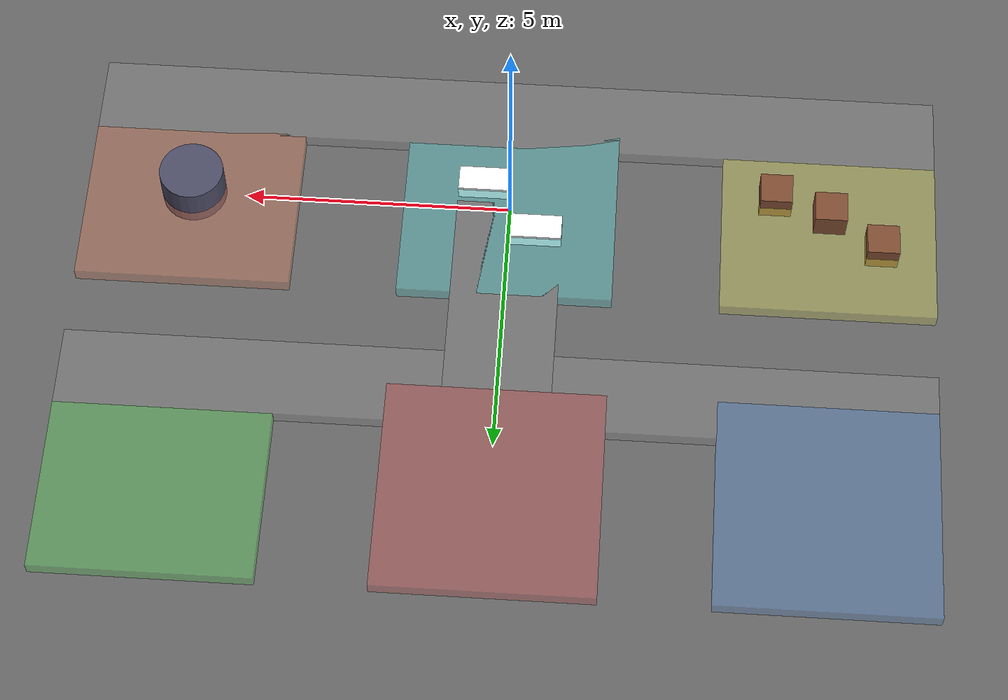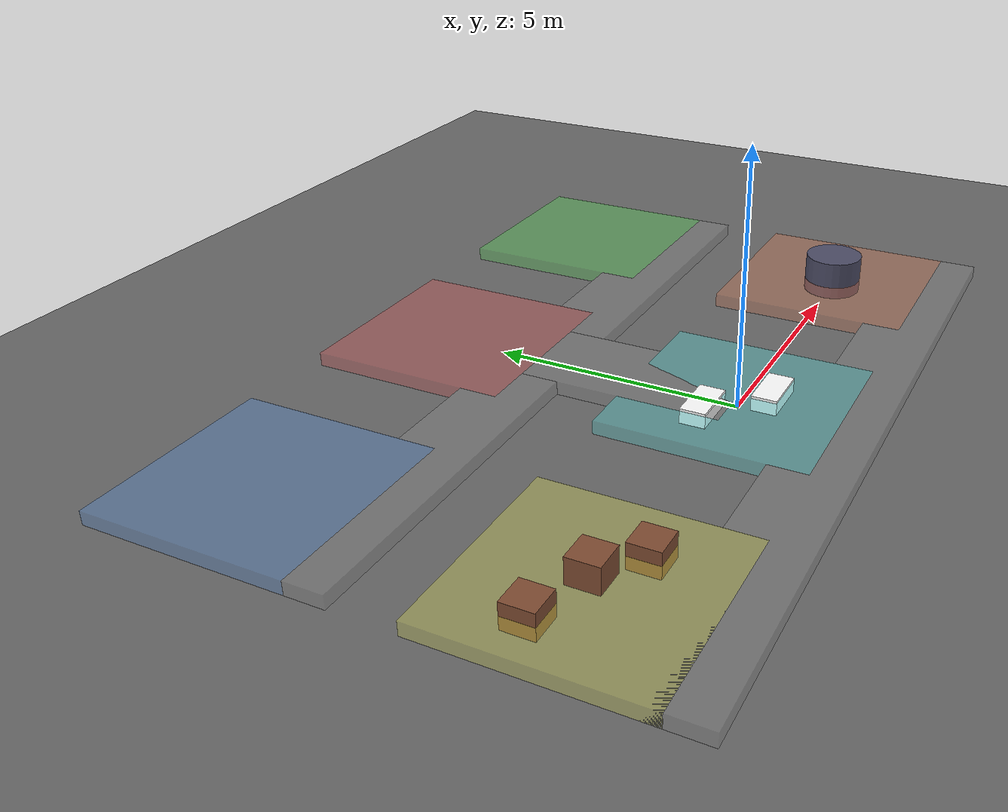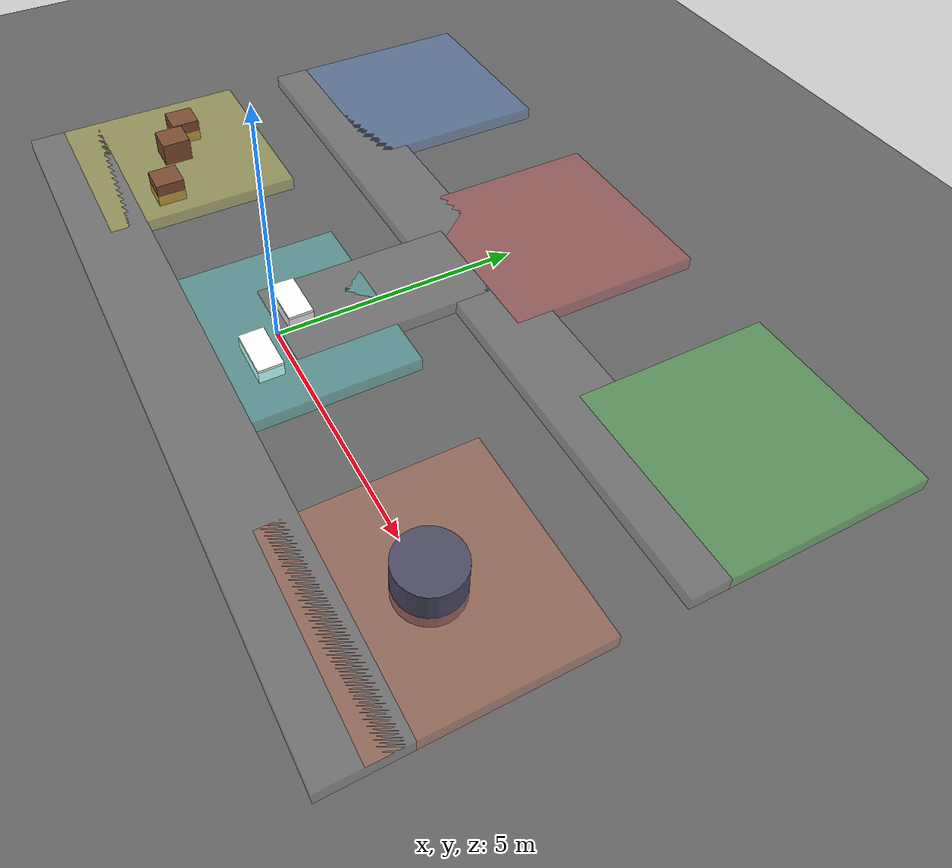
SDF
<?xml version="1.0" ?>
<sdf version="1.7">
  <world name="spacecraft_simple">

    <!-- ====== LIGHTING ====== -->

    <light name="ambient_light" type="directional">
      <pose>0 0 10 0 0 0</pose>
      <direction>-0.5 -0.5 -1</direction>
      <diffuse>0.9 0.9 0.9 1</diffuse>
      <specular>0.5 0.5 0.5 1</specular>
      <cast_shadows>false</cast_shadows>
    </light>

    <light name="overhead_light" type="point">
      <pose>0 3 8 0 0 0</pose>
      <diffuse>1 1 1 1</diffuse>
      <specular>0.5 0.5 0.5 1</specular>
      <attenuation>
        <range>20</range>
        <constant>0.5</constant>
        <linear>0.01</linear>
        <quadratic>0.001</quadratic>
      </attenuation>
    </light>

    <light name="side_light_1" type="point">
      <pose>-10 0 5 0 0 0</pose>
      <diffuse>0.7 0.7 0.8 1</diffuse>
      <specular>0.3 0.3 0.3 1</specular>
      <attenuation>
        <range>15</range>
        <constant>0.5</constant>
        <linear>0.01</linear>
        <quadratic>0.001</quadratic>
      </attenuation>
    </light>

    <light name="side_light_2" type="point">
      <pose>10 0 5 0 0 0</pose>
      <diffuse>0.7 0.7 0.8 1</diffuse>
      <specular>0.3 0.3 0.3 1</specular>
      <attenuation>
        <range>15</range>
        <constant>0.5</constant>
        <linear>0.01</linear>
        <quadratic>0.001</quadratic>
      </attenuation>
    </light>

    <!-- ====== GROUND ====== -->

    <model name="ground_plane">
      <static>true</static>
      <link name="link">
        <visual name="visual">
          <geometry>
            <plane><normal>0 0 1</normal><size>30 30</size></plane>
          </geometry>
          <material>
            <ambient>0.3 0.3 0.3 1</ambient>
            <diffuse>0.4 0.4 0.4 1</diffuse>
          </material>
        </visual>
        <collision name="collision">
          <geometry>
            <plane><normal>0 0 1</normal><size>30 30</size></plane>
          </geometry>
        </collision>
      </link>
    </model>

    <!-- ====== ROOMS (WITHOUT ROOFS - height 1.5 instead of 3) ====== -->

    <!-- COMMAND MODULE (Top-Left - Blue) - NO ROOF -->
    <model name="command_module">
      <static>true</static>
      <pose>-6 6 0 0 0 0</pose>
      <link name="wall">
        <visual name="visual">
          <geometry><box><size>4 4 0.5</size></box></geometry>
          <material>
            <ambient>0.2 0.4 0.8 0.3</ambient>
            <diffuse>0.3 0.6 1 0.3</diffuse>
            <transparent>true</transparent>
          </material>
        </visual>
        <collision name="collision">
          <geometry><box><size>4 4 0.5</size></box></geometry>
        </collision>
      </link>
    </model>

    <!-- SLEEPING QUARTERS (Top-Center - Red) - NO ROOF -->
    <model name="sleeping_quarters">
      <static>true</static>
      <pose>0 6 0 0 0 0</pose>
      <link name="wall">
        <visual name="visual">
          <geometry><box><size>4 4 0.5</size></box></geometry>
          <material>
            <ambient>0.8 0.2 0.2 0.3</ambient>
            <diffuse>1 0.3 0.3 0.3</diffuse>
            <transparent>true</transparent>
          </material>
        </visual>
        <collision name="collision">
          <geometry><box><size>4 4 0.5</size></box></geometry>
        </collision>
      </link>
    </model>

    <!-- AIRLOCK (Top-Right - Green) - NO ROOF -->
    <model name="airlock">
      <static>true</static>
      <pose>6 6 0 0 0 0</pose>
      <link name="wall">
        <visual name="visual">
          <geometry><box><size>4 4 0.5</size></box></geometry>
          <material>
            <ambient>0.2 0.8 0.2 0.3</ambient>
            <diffuse>0.3 1 0.3 0.3</diffuse>
            <transparent>true</transparent>
          </material>
        </visual>
        <collision name="collision">
          <geometry><box><size>4 4 0.5</size></box></geometry>
        </collision>
      </link>
    </model>

    <!-- TOP CORRIDOR -->
    <model name="corridor_top">
      <static>true</static>
      <pose>0 4 0 0 0 0</pose>
      <link name="wall">
        <visual name="visual">
          <geometry><box><size>16 1.5 0.5</size></box></geometry>
          <material>
            <ambient>0.5 0.5 0.5 0.3</ambient>
            <diffuse>0.6 0.6 0.6 0.3</diffuse>
            <transparent>true</transparent>
          </material>
        </visual>
        <collision name="collision">
          <geometry><box><size>16 1.5 0.5</size></box></geometry>
        </collision>
      </link>
    </model>

    <!-- CARGO BAY (Bottom-Left - Yellow) - NO ROOF -->
    <model name="cargo_bay">
      <static>true</static>
      <pose>-6 0 0 0 0 0</pose>
      <link name="wall">
        <visual name="visual">
          <geometry><box><size>4 4 0.5</size></box></geometry>
          <material>
            <ambient>0.8 0.8 0.2 0.3</ambient>
            <diffuse>1 1 0.3 0.3</diffuse>
            <transparent>true</transparent>
          </material>
        </visual>
        <collision name="collision">
          <geometry><box><size>4 4 0.5</size></box></geometry>
        </collision>
      </link>
    </model>

    <!-- CARGO OBSTACLES -->
    <model name="crate1">
      <static>true</static>
      <pose>-7 0.5 0.25 0 0 0</pose>
      <link name="crate">
        <visual name="visual">
          <geometry><box><size>0.6 0.6 0.5</size></box></geometry>
          <material>
            <ambient>0.4 0.2 0.1 1</ambient>
            <diffuse>0.5 0.3 0.2 1</diffuse>
          </material>
        </visual>
        <collision name="collision">
          <geometry><box><size>0.6 0.6 0.5</size></box></geometry>
        </collision>
      </link>
    </model>

    <model name="crate2">
      <static>true</static>
      <pose>-5 -0.5 0.25 0 0 0</pose>
      <link name="crate">
        <visual name="visual">
          <geometry><box><size>0.6 0.6 0.5</size></box></geometry>
          <material>
            <ambient>0.4 0.2 0.1 1</ambient>
            <diffuse>0.5 0.3 0.2 1</diffuse>
          </material>
        </visual>
        <collision name="collision">
          <geometry><box><size>0.6 0.6 0.5</size></box></geometry>
        </collision>
      </link>
    </model>

    <model name="crate3">
      <static>true</static>
      <pose>-6 0 0.5 0 0 0</pose>
      <link name="crate">
        <visual name="visual">
          <geometry><box><size>0.6 0.6 0.5</size></box></geometry>
          <material>
            <ambient>0.4 0.2 0.1 1</ambient>
            <diffuse>0.5 0.3 0.2 1</diffuse>
          </material>
        </visual>
        <collision name="collision">
          <geometry><box><size>0.6 0.6 0.5</size></box></geometry>
        </collision>
      </link>
    </model>

    <!-- MEDICAL BAY (Bottom-Center - Cyan) - NO ROOF -->
    <model name="medical_bay">
      <static>true</static>
      <pose>0 0 0 0 0 0</pose>
      <link name="wall">
        <visual name="visual">
          <geometry><box><size>4 4 0.5</size></box></geometry>
          <material>
            <ambient>0.2 0.8 0.8 0.3</ambient>
            <diffuse>0.3 1 1 0.3</diffuse>
            <transparent>true</transparent>
          </material>
        </visual>
        <collision name="collision">
          <geometry><box><size>4 4 0.5</size></box></geometry>
        </collision>
      </link>
    </model>

    <!-- MEDICAL EQUIPMENT -->
    <model name="hospital_bed1">
      <static>true</static>
      <pose>-0.5 0.5 0.15 0 0 0</pose>
      <link name="bed">
        <visual name="visual">
          <geometry><box><size>1 0.5 0.3</size></box></geometry>
          <material>
            <ambient>0.9 0.9 0.9 1</ambient>
            <diffuse>1 1 1 1</diffuse>
          </material>
        </visual>
        <collision name="collision">
          <geometry><box><size>1 0.5 0.3</size></box></geometry>
        </collision>
      </link>
    </model>

    <model name="hospital_bed2">
      <static>true</static>
      <pose>0.5 -0.5 0.15 0 0 0</pose>
      <link name="bed">
        <visual name="visual">
          <geometry><box><size>1 0.5 0.3</size></box></geometry>
          <material>
            <ambient>0.9 0.9 0.9 1</ambient>
            <diffuse>1 1 1 1</diffuse>
          </material>
        </visual>
        <collision name="collision">
          <geometry><box><size>1 0.5 0.3</size></box></geometry>
        </collision>
      </link>
    </model>

    <!-- ENGINE ROOM (Bottom-Right - Orange) - NO ROOF -->
    <model name="engine_room">
      <static>true</static>
      <pose>6 0 0 0 0 0</pose>
      <link name="wall">
        <visual name="visual">
          <geometry><box><size>4 4 0.5</size></box></geometry>
          <material>
            <ambient>0.8 0.4 0.2 0.3</ambient>
            <diffuse>1 0.5 0.3 0.3</diffuse>
            <transparent>true</transparent>
          </material>
        </visual>
        <collision name="collision">
          <geometry><box><size>4 4 0.5</size></box></geometry>
        </collision>
      </link>
    </model>

    <!-- ENGINE MACHINERY -->
    <model name="engine_machine">
      <static>true</static>
      <pose>6 0 0.4 0 0 0</pose>
      <link name="machine">
        <visual name="visual">
          <geometry><cylinder><radius>0.6</radius><length>0.8</length></cylinder></geometry>
          <material>
            <ambient>0.2 0.2 0.3 1</ambient>
            <diffuse>0.3 0.3 0.4 1</diffuse>
          </material>
        </visual>
        <collision name="collision">
          <geometry><cylinder><radius>0.6</radius><length>0.8</length></cylinder></geometry>
        </collision>
      </link>
    </model>

    <!-- BOTTOM CORRIDOR -->
    <model name="corridor_bottom">
      <static>true</static>
      <pose>0 -2 0 0 0 0</pose>
      <link name="wall">
        <visual name="visual">
          <geometry><box><size>16 1.5 0.5</size></box></geometry>
          <material>
            <ambient>0.5 0.5 0.5 0.3</ambient>
            <diffuse>0.6 0.6 0.6 0.3</diffuse>
            <transparent>true</transparent>
          </material>
        </visual>
        <collision name="collision">
          <geometry><box><size>16 1.5 0.5</size></box></geometry>
        </collision>
      </link>
    </model>

    <!-- VERTICAL CORRIDOR -->
    <model name="corridor_vertical">
      <static>true</static>
      <pose>0 2 0 0 0 0</pose>
      <link name="wall">
        <visual name="visual">
          <geometry><box><size>2 4 0.5</size></box></geometry>
          <material>
            <ambient>0.5 0.5 0.5 0.3</ambient>
            <diffuse>0.6 0.6 0.6 0.3</diffuse>
            <transparent>true</transparent>
          </material>
        </visual>
        <collision name="collision">
          <geometry><box><size>2 4 0.5</size></box></geometry>
        </collision>
      </link>
    </model>

  </world>
</sdf>
